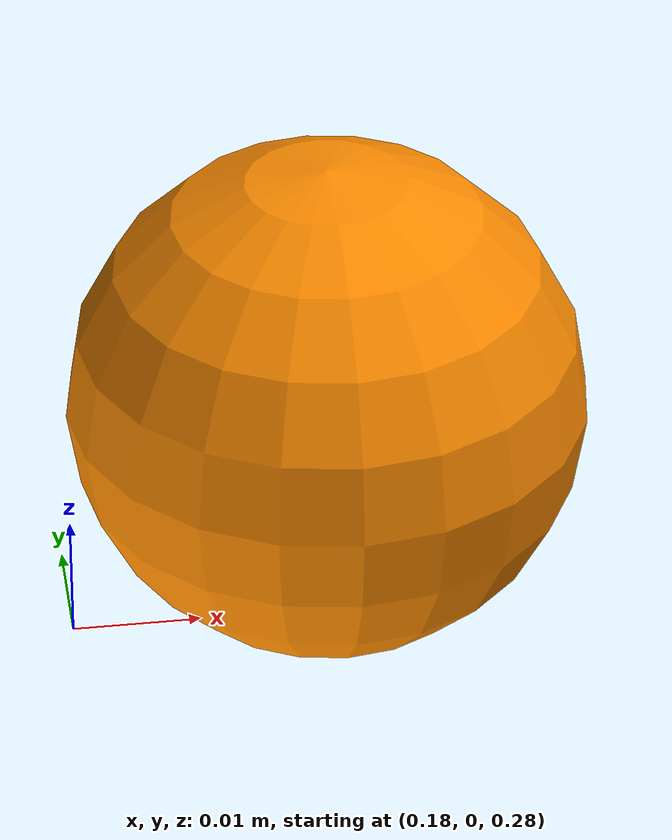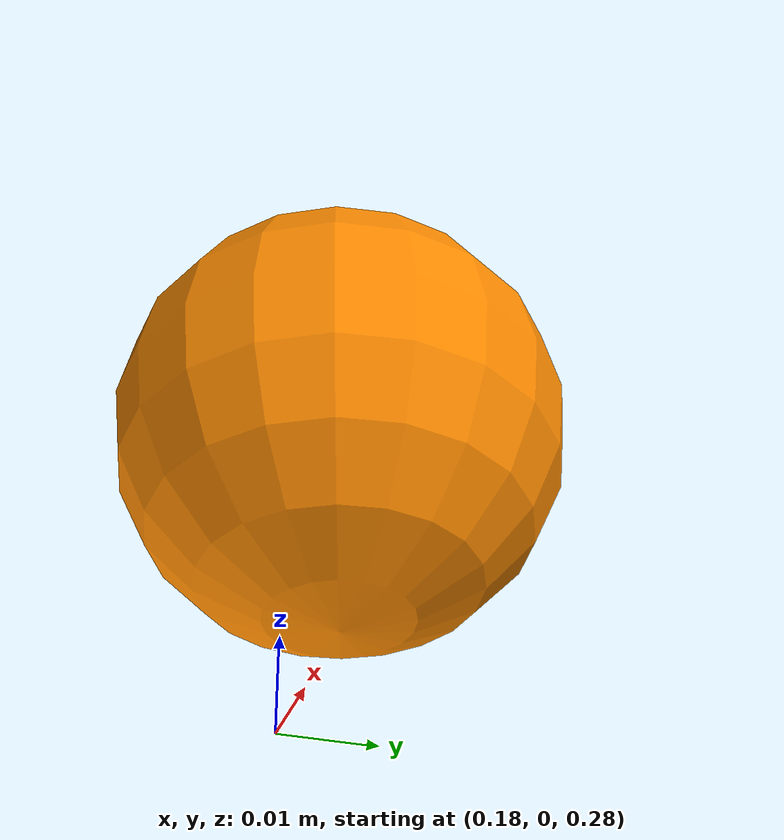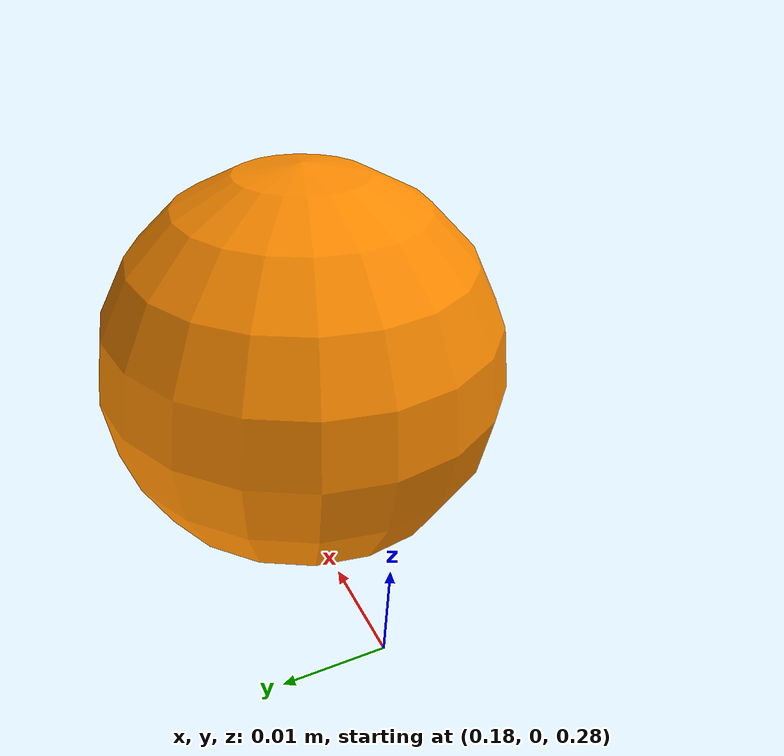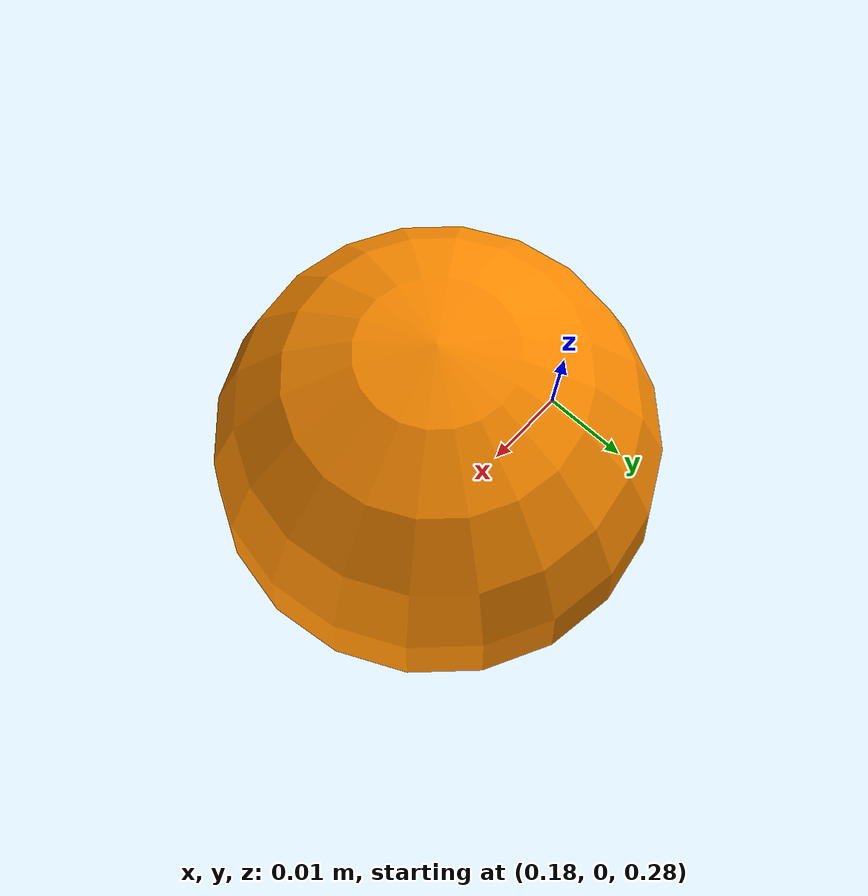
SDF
<?xml version="1.0"?>
<sdf version="1.9">
  <model name="pingpong_ball">
    <!-- start 0.2 m in, centered, 0.30 m above the table top (z=0) -->
    <pose>0.2 0 0.3 0 0 0</pose>
    <link name="ball_link">
      <inertial>
        <mass>0.0027</mass>
        <inertia>
          <ixx>4.32e-7</ixx><iyy>4.32e-7</iyy><izz>4.32e-7</izz>
          <ixy>0</ixy><ixz>0</ixz><iyz>0</iyz>
        </inertia>
      </inertial>
      <collision name="col">
        <geometry><sphere><radius>0.02</radius></sphere></geometry>
        <surface>
          <bounce><restitution_coefficient>0.9</restitution_coefficient><threshold>0</threshold></bounce>
          <friction><ode><mu>0.25</mu><mu2>0.25</mu2></ode></friction>
        </surface>
      </collision>
      <visual name="vis">
        <geometry><sphere><radius>0.02</radius></sphere></geometry>
        <material><ambient>1 0.5 0 1</ambient><diffuse>1 0.55 0 1</diffuse></material>
      </visual>
    </link>

    <plugin filename="gz-sim-pose-publisher-system" name="gz::sim::systems::PosePublisher">
      <publish_model_pose>true</publish_model_pose>
      <publish_link_pose>false</publish_link_pose>
      <use_pose_vector_msg>true</use_pose_vector_msg>
      <update_frequency>1000</update_frequency>
    </plugin>

    <!-- aero + launch; edit init_linear / init_angular per working condition.
         topspin = +y; constants match ttsim/physics.py -->
    <plugin filename="AeroLaunch" name="ttsim::AeroLaunch">
      <link_name>ball_link</link_name>
      <mass>0.0027</mass>
      <drag_coeff>0.1117</drag_coeff>
      <magnus_coeff>0.0016</magnus_coeff>
      <init_linear>6 0 0.9</init_linear>
      <init_angular>0 400 0</init_angular>
    </plugin>
  </model>
</sdf>
